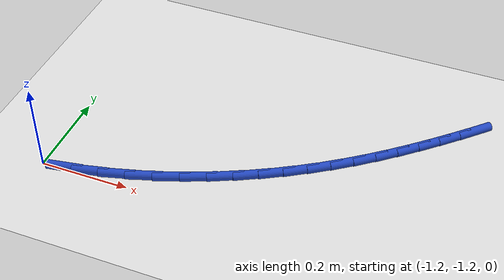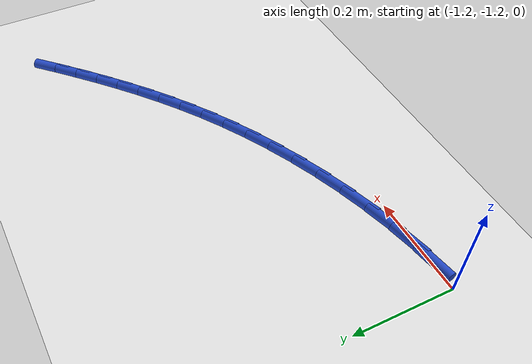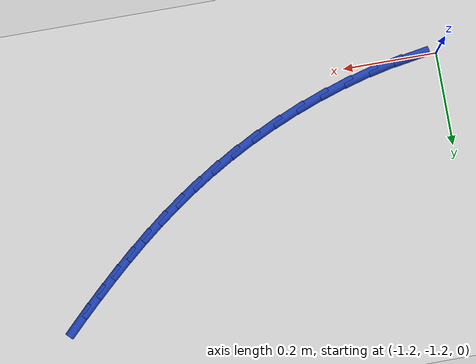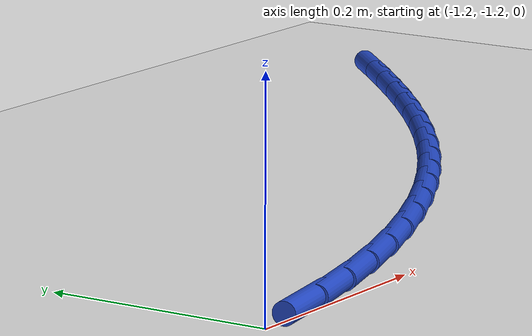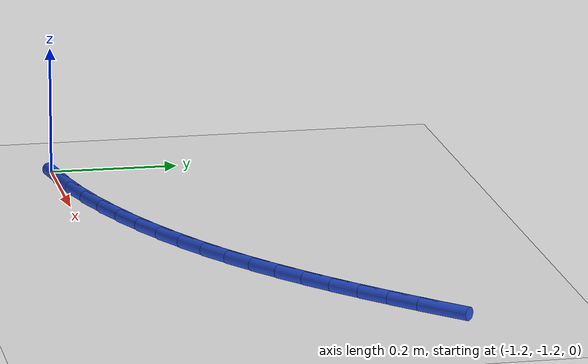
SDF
<sdf version="1.6">
 <world name="default">
  <model name="ground_plane">
   <static>1</static>
   <link name="link">
    <collision name="collision">
     <geometry><plane><normal>0 0 1</normal><size>100 100</size></plane></geometry>
     <surface><friction><ode><mu>100</mu><mu2>50</mu2></ode></friction></surface>
    </collision>
    <visual name="visual">
     <cast_shadows>0</cast_shadows>
     <geometry><plane><normal>0 0 1</normal><size>100 100</size></plane></geometry>
     <material>
      <script><uri>file://media/materials/scripts/gazebo.material</uri><name>Gazebo/WhiteGlow</name></script>
     </material>
    </visual>
   </link>
  </model>
  <model name="line">
   <link name="link_106">
    <pose>-1.1456617461465854 -1.2000701531280427 0.01 0 1.57 0.17077673195004955</pose>
    <collision name="collision">
     <geometry><cylinder><radius>0.01</radius><length>0.08</length></cylinder></geometry>
    </collision>
    <visual name="visual">
     <material>
      <script><name>Gazebo/Blue</name><uri>file://media/materials/scripts/gazebo.material</uri></script>
     </material>
     <geometry><cylinder><radius>0.01</radius><length>0.08</length></cylinder></geometry>
    </visual>
   </link>
   <link name="link_107">
    <pose>-1.089460710526364 -1.1903779165228967 0.01 0 1.57 0.2270507749399686</pose>
    <collision name="collision">
     <geometry><cylinder><radius>0.01</radius><length>0.08</length></cylinder></geometry>
    </collision>
    <visual name="visual">
     <material>
      <script><name>Gazebo/Blue</name><uri>file://media/materials/scripts/gazebo.material</uri></script>
     </material>
     <geometry><cylinder><radius>0.01</radius><length>0.08</length></cylinder></geometry>
    </visual>
   </link>
   <link name="link_108">
    <pose>-1.03311587546358 -1.1773603106942705 0.01 0 1.57 0.2779555805841462</pose>
    <collision name="collision">
     <geometry><cylinder><radius>0.01</radius><length>0.08</length></cylinder></geometry>
    </collision>
    <visual name="visual">
     <material>
      <script><name>Gazebo/Blue</name><uri>file://media/materials/scripts/gazebo.material</uri></script>
     </material>
     <geometry><cylinder><radius>0.01</radius><length>0.08</length></cylinder></geometry>
    </visual>
   </link>
   <link name="link_109">
    <pose>-0.9771438764654417 -1.161389139834158 0.01 0 1.57 0.32488583281249117</pose>
    <collision name="collision">
     <geometry><cylinder><radius>0.01</radius><length>0.08</length></cylinder></geometry>
    </collision>
    <visual name="visual">
     <material>
      <script><name>Gazebo/Blue</name><uri>file://media/materials/scripts/gazebo.material</uri></script>
     </material>
     <geometry><cylinder><radius>0.01</radius><length>0.08</length></cylinder></geometry>
    </visual>
   </link>
   <link name="link_110">
    <pose>-0.9220613490391601 -1.1428362081345538 0.01 0 1.57 0.3690892900985718</pose>
    <collision name="collision">
     <geometry><cylinder><radius>0.01</radius><length>0.08</length></cylinder></geometry>
    </collision>
    <visual name="visual">
     <material>
      <script><name>Gazebo/Blue</name><uri>file://media/materials/scripts/gazebo.material</uri></script>
     </material>
     <geometry><cylinder><radius>0.01</radius><length>0.08</length></cylinder></geometry>
    </visual>
   </link>
   <link name="link_111">
    <pose>-0.868384928691943 -1.1220733197874515 0.01 0 1.57 0.41174217228661747</pose>
    <collision name="collision">
     <geometry><cylinder><radius>0.01</radius><length>0.08</length></cylinder></geometry>
    </collision>
    <visual name="visual">
     <material>
      <script><name>Gazebo/Blue</name><uri>file://media/materials/scripts/gazebo.material</uri></script>
     </material>
     <geometry><cylinder><radius>0.01</radius><length>0.08</length></cylinder></geometry>
    </visual>
   </link>
   <link name="link_112">
    <pose>-0.8166312509309992 -1.0994722789848452 0.01 0 1.57 0.4539332629289233</pose>
    <collision name="collision">
     <geometry><cylinder><radius>0.01</radius><length>0.08</length></cylinder></geometry>
    </collision>
    <visual name="visual">
     <material>
      <script><name>Gazebo/Blue</name><uri>file://media/materials/scripts/gazebo.material</uri></script>
     </material>
     <geometry><cylinder><radius>0.01</radius><length>0.08</length></cylinder></geometry>
    </visual>
   </link>
   <link name="link_113">
    <pose>-0.7672169517677349 -1.0753622822166442 0.01 0 1.57 0.4957717222936617</pose>
    <collision name="collision">
     <geometry><cylinder><radius>0.01</radius><length>0.08</length></cylinder></geometry>
    </collision>
    <visual name="visual">
     <material>
      <script><name>Gazebo/Blue</name><uri>file://media/materials/scripts/gazebo.material</uri></script>
     </material>
     <geometry><cylinder><radius>0.01</radius><length>0.08</length></cylinder></geometry>
    </visual>
   </link>
   <link name="link_114">
    <pose>-0.7200724328264515 -1.049865351629097 0.01 0 1.57 0.5366535718681243</pose>
    <collision name="collision">
     <geometry><cylinder><radius>0.01</radius><length>0.08</length></cylinder></geometry>
    </collision>
    <visual name="visual">
     <material>
      <script><name>Gazebo/Blue</name><uri>file://media/materials/scripts/gazebo.material</uri></script>
     </material>
     <geometry><cylinder><radius>0.01</radius><length>0.08</length></cylinder></geometry>
    </visual>
   </link>
   <link name="link_115">
    <pose>-0.6749805229430883 -1.0230406316774006 0.01 0 1.57 0.5759956613167875</pose>
    <collision name="collision">
     <geometry><cylinder><radius>0.01</radius><length>0.08</length></cylinder></geometry>
    </collision>
    <visual name="visual">
     <material>
      <script><name>Gazebo/Blue</name><uri>file://media/materials/scripts/gazebo.material</uri></script>
     </material>
     <geometry><cylinder><radius>0.01</radius><length>0.08</length></cylinder></geometry>
    </visual>
   </link>
   <link name="link_116">
    <pose>-0.6317240174904148 -0.9949472525587925 0.01 0 1.57 0.6132375162541063</pose>
    <collision name="collision">
     <geometry><cylinder><radius>0.01</radius><length>0.08</length></cylinder></geometry>
    </collision>
    <visual name="visual">
     <material>
      <script><name>Gazebo/Blue</name><uri>file://media/materials/scripts/gazebo.material</uri></script>
     </material>
     <geometry><cylinder><radius>0.01</radius><length>0.08</length></cylinder></geometry>
    </visual>
   </link>
   <link name="link_117">
    <pose>-0.5900857118412007 -0.9656443444705104 0.01 0 1.57 0.6478659484178702</pose>
    <collision name="collision">
     <geometry><cylinder><radius>0.01</radius><length>0.08</length></cylinder></geometry>
    </collision>
    <visual name="visual">
     <material>
      <script><name>Gazebo/Blue</name><uri>file://media/materials/scripts/gazebo.material</uri></script>
     </material>
     <geometry><cylinder><radius>0.01</radius><length>0.08</length></cylinder></geometry>
    </visual>
   </link>
   <link name="link_118">
    <pose>-0.5498484013682177 -0.9351910376097927 0.01 0 1.57 0.679434691302271</pose>
    <collision name="collision">
     <geometry><cylinder><radius>0.01</radius><length>0.08</length></cylinder></geometry>
    </collision>
    <visual name="visual">
     <material>
      <script><name>Gazebo/Blue</name><uri>file://media/materials/scripts/gazebo.material</uri></script>
     </material>
     <geometry><cylinder><radius>0.01</radius><length>0.08</length></cylinder></geometry>
    </visual>
   </link>
   <link name="link_119">
    <pose>-0.5107948814442346 -0.903646462173877 0.01 0 1.57 0.707577495156479</pose>
    <collision name="collision">
     <geometry><cylinder><radius>0.01</radius><length>0.08</length></cylinder></geometry>
    </collision>
    <visual name="visual">
     <material>
      <script><name>Gazebo/Blue</name><uri>file://media/materials/scripts/gazebo.material</uri></script>
     </material>
     <geometry><cylinder><radius>0.01</radius><length>0.08</length></cylinder></geometry>
    </visual>
   </link>
   <link name="link_120">
    <pose>-0.47270794744202155 -0.8710697483600005 0.01 0 1.57 0.732014367489803</pose>
    <collision name="collision">
     <geometry><cylinder><radius>0.01</radius><length>0.08</length></cylinder></geometry>
    </collision>
    <visual name="visual">
     <material>
      <script><name>Gazebo/Blue</name><uri>file://media/materials/scripts/gazebo.material</uri></script>
     </material>
     <geometry><cylinder><radius>0.01</radius><length>0.08</length></cylinder></geometry>
    </visual>
   </link>
   <link name="link_121">
    <pose>-0.4353703947343488 -0.8375200263654017 0.01 0 1.57 0.7525516997688394</pose>
    <collision name="collision">
     <geometry><cylinder><radius>0.01</radius><length>0.08</length></cylinder></geometry>
    </collision>
    <visual name="visual">
     <material>
      <script><name>Gazebo/Blue</name><uri>file://media/materials/scripts/gazebo.material</uri></script>
     </material>
     <geometry><cylinder><radius>0.01</radius><length>0.08</length></cylinder></geometry>
    </visual>
   </link>
   <link name="link_122">
    <pose>-0.3985650186939857 -0.8030564263873173 0.01 0 1.57 0.7691716139554954</pose>
    <collision name="collision">
     <geometry><cylinder><radius>0.01</radius><length>0.08</length></cylinder></geometry>
    </collision>
    <visual name="visual">
     <material>
      <script><name>Gazebo/Blue</name><uri>file://media/materials/scripts/gazebo.material</uri></script>
     </material>
     <geometry><cylinder><radius>0.01</radius><length>0.08</length></cylinder></geometry>
    </visual>
   </link>
   <link name="link_123">
    <pose>-0.362079959558211 -0.7677366148084088 0.01 0 1.57 0.7855695772713355</pose>
    <collision name="collision">
     <geometry><cylinder><radius>0.01</radius><length>0.08</length></cylinder></geometry>
    </collision>
    <visual name="visual">
     <material>
      <script><name>Gazebo/Blue</name><uri>file://media/materials/scripts/gazebo.material</uri></script>
     </material>
     <geometry><cylinder><radius>0.01</radius><length>0.08</length></cylinder></geometry>
    </visual>
   </link>
  </model>
 </world>
</sdf>
